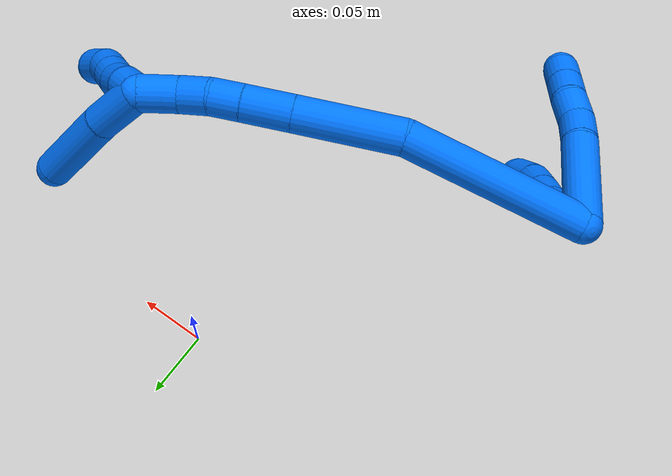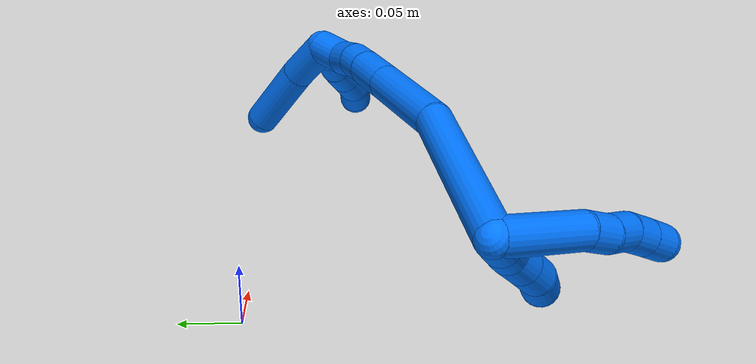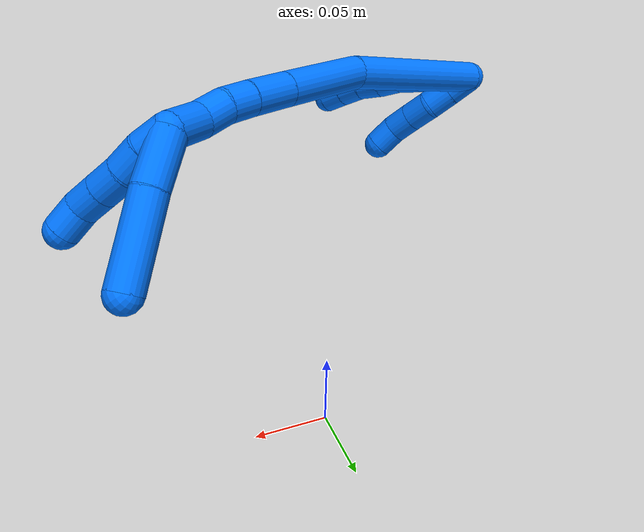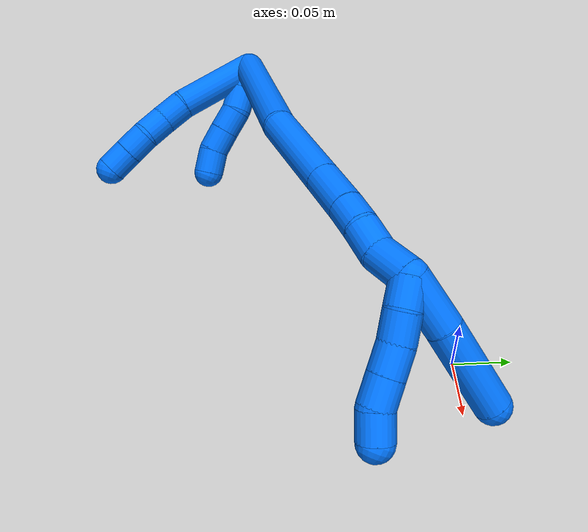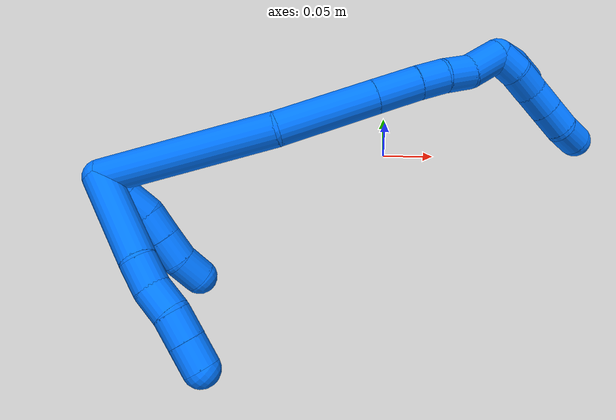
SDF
<sdf version="1.7">
 <world name="default">
  <model name="14">
   <static>0</static>
   <link name="14">
    <collision name="collision-cylinder-e_1_2_8">
     <pose>0.001274 -0.020479 -0.02689 2.49072 0.037686 0.111581</pose>
     <geometry><cylinder><radius>0.0125</radius><length>0.067649</length></cylinder></geometry>
     <surface>
      <friction><ode><mu>1.16</mu><mu2>1.16</mu2><slip1>0</slip1><slip2>0</slip2></ode></friction>
      <contact><ode><kp>1e+06</kp><kd>1</kd><max_vel>0</max_vel><min_depth>0.001</min_depth></ode></contact>
     </surface>
    </collision>
    <visual name="visual-cylinder-e_1_2_8">
     <pose>0.001274 -0.020479 -0.02689 2.49072 0.037686 0.111581</pose>
     <geometry><cylinder><radius>0.0125</radius><length>0.067649</length></cylinder></geometry>
     <material><ambient>0 0.462745 1 1</ambient></material>
    </visual>
    <collision name="collision-cylinder-e_2_8_9">
     <pose>0.001921 -0.045981 -0.063188 2.65116 -0.058839 -0.234113</pose>
     <geometry><cylinder><radius>0.0125</radius><length>0.021365</length></cylinder></geometry>
     <surface>
      <friction><ode><mu>1.16</mu><mu2>1.16</mu2><slip1>0</slip1><slip2>0</slip2></ode></friction>
      <contact><ode><kp>1e+06</kp><kd>1</kd><max_vel>0</max_vel><min_depth>0.001</min_depth></ode></contact>
     </surface>
    </collision>
    <visual name="visual-cylinder-e_2_8_9">
     <pose>0.001921 -0.045981 -0.063188 2.65116 -0.058839 -0.234113</pose>
     <geometry><cylinder><radius>0.0125</radius><length>0.021365</length></cylinder></geometry>
     <material><ambient>0 0.462745 1 1</ambient></material>
    </visual>
    <collision name="collision-cylinder-e_3_9_10">
     <pose>0.002967 -0.055581 -0.08169 2.67537 0.162975 0.66259</pose>
     <geometry><cylinder><radius>0.0125</radius><length>0.020637</length></cylinder></geometry>
     <surface>
      <friction><ode><mu>1.16</mu><mu2>1.16</mu2><slip1>0</slip1><slip2>0</slip2></ode></friction>
      <contact><ode><kp>1e+06</kp><kd>1</kd><max_vel>0</max_vel><min_depth>0.001</min_depth></ode></contact>
     </surface>
    </collision>
    <visual name="visual-cylinder-e_3_9_10">
     <pose>0.002967 -0.055581 -0.08169 2.67537 0.162975 0.66259</pose>
     <geometry><cylinder><radius>0.0125</radius><length>0.020637</length></cylinder></geometry>
     <material><ambient>0 0.462745 1 1</ambient></material>
    </visual>
    <collision name="collision-cylinder-e_4_10_11">
     <pose>0.003765 -0.063995 -0.100096 2.75069 -0.086748 -0.431615</pose>
     <geometry><cylinder><radius>0.0125</radius><length>0.020217</length></cylinder></geometry>
     <surface>
      <friction><ode><mu>1.16</mu><mu2>1.16</mu2><slip1>0</slip1><slip2>0</slip2></ode></friction>
      <contact><ode><kp>1e+06</kp><kd>1</kd><max_vel>0</max_vel><min_depth>0.001</min_depth></ode></contact>
     </surface>
    </collision>
    <visual name="visual-cylinder-e_4_10_11">
     <pose>0.003765 -0.063995 -0.100096 2.75069 -0.086748 -0.431615</pose>
     <geometry><cylinder><radius>0.0125</radius><length>0.020217</length></cylinder></geometry>
     <material><ambient>0 0.462745 1 1</ambient></material>
    </visual>
    <collision name="collision-cylinder-e_5_11_6">
     <pose>0.00189 -0.07153 -0.118715 2.76345 -0.09944 -0.50882</pose>
     <geometry><cylinder><radius>0.0125</radius><length>0.020132</length></cylinder></geometry>
     <surface>
      <friction><ode><mu>1.16</mu><mu2>1.16</mu2><slip1>0</slip1><slip2>0</slip2></ode></friction>
      <contact><ode><kp>1e+06</kp><kd>1</kd><max_vel>0</max_vel><min_depth>0.001</min_depth></ode></contact>
     </surface>
    </collision>
    <visual name="visual-cylinder-e_5_11_6">
     <pose>0.00189 -0.07153 -0.118715 2.76345 -0.09944 -0.50882</pose>
     <geometry><cylinder><radius>0.0125</radius><length>0.020132</length></cylinder></geometry>
     <material><ambient>0 0.462745 1 1</ambient></material>
    </visual>
    <collision name="collision-cylinder-e_1_2_12">
     <pose>0.000301 0.000828 -0.009961 -3.05869 0.030093 -0.696038</pose>
     <geometry><cylinder><radius>0.0125</radius><length>0.02</length></cylinder></geometry>
     <surface>
      <friction><ode><mu>1.16</mu><mu2>1.16</mu2><slip1>0</slip1><slip2>0</slip2></ode></friction>
      <contact><ode><kp>1e+06</kp><kd>1</kd><max_vel>0</max_vel><min_depth>0.001</min_depth></ode></contact>
     </surface>
    </collision>
    <visual name="visual-cylinder-e_1_2_12">
     <pose>0.000301 0.000828 -0.009961 -3.05869 0.030093 -0.696038</pose>
     <geometry><cylinder><radius>0.0125</radius><length>0.02</length></cylinder></geometry>
     <material><ambient>0 0.462745 1 1</ambient></material>
    </visual>
    <collision name="collision-cylinder-e_2_12_13">
     <pose>0.001107 0.002406 -0.029881 -3.06638 0.050516 -1.18261</pose>
     <geometry><cylinder><radius>0.0125</radius><length>0.02</length></cylinder></geometry>
     <surface>
      <friction><ode><mu>1.16</mu><mu2>1.16</mu2><slip1>0</slip1><slip2>0</slip2></ode></friction>
      <contact><ode><kp>1e+06</kp><kd>1</kd><max_vel>0</max_vel><min_depth>0.001</min_depth></ode></contact>
     </surface>
    </collision>
    <visual name="visual-cylinder-e_2_12_13">
     <pose>0.001107 0.002406 -0.029881 -3.06638 0.050516 -1.18261</pose>
     <geometry><cylinder><radius>0.0125</radius><length>0.02</length></cylinder></geometry>
     <material><ambient>0 0.462745 1 1</ambient></material>
    </visual>
    <collision name="collision-cylinder-e_3_13_14">
     <pose>3.3e-05 0.001904 -0.049635 3.01441 -0.158558 -1.79022</pose>
     <geometry><cylinder><radius>0.0125</radius><length>0.02</length></cylinder></geometry>
     <surface>
      <friction><ode><mu>1.16</mu><mu2>1.16</mu2><slip1>0</slip1><slip2>0</slip2></ode></friction>
      <contact><ode><kp>1e+06</kp><kd>1</kd><max_vel>0</max_vel><min_depth>0.001</min_depth></ode></contact>
     </surface>
    </collision>
    <visual name="visual-cylinder-e_3_13_14">
     <pose>3.3e-05 0.001904 -0.049635 3.01441 -0.158558 -1.79022</pose>
     <geometry><cylinder><radius>0.0125</radius><length>0.02</length></cylinder></geometry>
     <material><ambient>0 0.462745 1 1</ambient></material>
    </visual>
    <collision name="collision-cylinder-e_4_14_15">
     <pose>-0.003059 -0.0003 -0.069269 3.04522 -0.15188 -2.01184</pose>
     <geometry><cylinder><radius>0.0125</radius><length>0.02</length></cylinder></geometry>
     <surface>
      <friction><ode><mu>1.16</mu><mu2>1.16</mu2><slip1>0</slip1><slip2>0</slip2></ode></friction>
      <contact><ode><kp>1e+06</kp><kd>1</kd><max_vel>0</max_vel><min_depth>0.001</min_depth></ode></contact>
     </surface>
    </collision>
    <visual name="visual-cylinder-e_4_14_15">
     <pose>-0.003059 -0.0003 -0.069269 3.04522 -0.15188 -2.01184</pose>
     <geometry><cylinder><radius>0.0125</radius><length>0.02</length></cylinder></geometry>
     <material><ambient>0 0.462745 1 1</ambient></material>
    </visual>
    <collision name="collision-cylinder-e_5_15_5">
     <pose>-0.005079 0.000512 -0.088938 -2.9642 -0.050676 0.555236</pose>
     <geometry><cylinder><radius>0.0125</radius><length>0.02</length></cylinder></geometry>
     <surface>
      <friction><ode><mu>1.16</mu><mu2>1.16</mu2><slip1>0</slip1><slip2>0</slip2></ode></friction>
      <contact><ode><kp>1e+06</kp><kd>1</kd><max_vel>0</max_vel><min_depth>0.001</min_depth></ode></contact>
     </surface>
    </collision>
    <visual name="visual-cylinder-e_5_15_5">
     <pose>-0.005079 0.000512 -0.088938 -2.9642 -0.050676 0.555236</pose>
     <geometry><cylinder><radius>0.0125</radius><length>0.02</length></cylinder></geometry>
     <material><ambient>0 0.462745 1 1</ambient></material>
    </visual>
    <collision name="collision-cylinder-e_1_2_16">
     <pose>0.054871 0.011299 -0.027617 -2.75324 1.07273 -2.50267</pose>
     <geometry><cylinder><radius>0.0125</radius><length>0.124919</length></cylinder></geometry>
     <surface>
      <friction><ode><mu>1.16</mu><mu2>1.16</mu2><slip1>0</slip1><slip2>0</slip2></ode></friction>
      <contact><ode><kp>1e+06</kp><kd>1</kd><max_vel>0</max_vel><min_depth>0.001</min_depth></ode></contact>
     </surface>
    </collision>
    <visual name="visual-cylinder-e_1_2_16">
     <pose>0.054871 0.011299 -0.027617 -2.75324 1.07273 -2.50267</pose>
     <geometry><cylinder><radius>0.0125</radius><length>0.124919</length></cylinder></geometry>
     <material><ambient>0 0.462745 1 1</ambient></material>
    </visual>
    <collision name="collision-cylinder-e_2_16_17">
     <pose>0.138776 0.037699 -0.070778 -2.37065 0.929549 -1.78087</pose>
     <geometry><cylinder><radius>0.0125</radius><length>0.07246</length></cylinder></geometry>
     <surface>
      <friction><ode><mu>1.16</mu><mu2>1.16</mu2><slip1>0</slip1><slip2>0</slip2></ode></friction>
      <contact><ode><kp>1e+06</kp><kd>1</kd><max_vel>0</max_vel><min_depth>0.001</min_depth></ode></contact>
     </surface>
    </collision>
    <visual name="visual-cylinder-e_2_16_17">
     <pose>0.138776 0.037699 -0.070778 -2.37065 0.929549 -1.78087</pose>
     <geometry><cylinder><radius>0.0125</radius><length>0.07246</length></cylinder></geometry>
     <material><ambient>0 0.462745 1 1</ambient></material>
    </visual>
    <collision name="collision-cylinder-e_3_17_18">
     <pose>0.18102 0.059765 -0.0935 -2.37126 0.922867 -1.77354</pose>
     <geometry><cylinder><radius>0.0125</radius><length>0.033138</length></cylinder></geometry>
     <surface>
      <friction><ode><mu>1.16</mu><mu2>1.16</mu2><slip1>0</slip1><slip2>0</slip2></ode></friction>
      <contact><ode><kp>1e+06</kp><kd>1</kd><max_vel>0</max_vel><min_depth>0.001</min_depth></ode></contact>
     </surface>
    </collision>
    <visual name="visual-cylinder-e_3_17_18">
     <pose>0.18102 0.059765 -0.0935 -2.37126 0.922867 -1.77354</pose>
     <geometry><cylinder><radius>0.0125</radius><length>0.033138</length></cylinder></geometry>
     <material><ambient>0 0.462745 1 1</ambient></material>
    </visual>
    <collision name="collision-cylinder-e_4_18_19">
     <pose>0.20221 0.07115 -0.105569 -2.40677 0.880168 -1.7711</pose>
     <geometry><cylinder><radius>0.0125</radius><length>0.020702</length></cylinder></geometry>
     <surface>
      <friction><ode><mu>1.16</mu><mu2>1.16</mu2><slip1>0</slip1><slip2>0</slip2></ode></friction>
      <contact><ode><kp>1e+06</kp><kd>1</kd><max_vel>0</max_vel><min_depth>0.001</min_depth></ode></contact>
     </surface>
    </collision>
    <visual name="visual-cylinder-e_4_18_19">
     <pose>0.20221 0.07115 -0.105569 -2.40677 0.880168 -1.7711</pose>
     <geometry><cylinder><radius>0.0125</radius><length>0.020702</length></cylinder></geometry>
     <material><ambient>0 0.462745 1 1</ambient></material>
    </visual>
    <collision name="collision-cylinder-e_5_19_20">
     <pose>0.216978 0.081279 -0.116343 -2.3711 0.691776 -1.45308</pose>
     <geometry><cylinder><radius>0.0125</radius><length>0.021286</length></cylinder></geometry>
     <surface>
      <friction><ode><mu>1.16</mu><mu2>1.16</mu2><slip1>0</slip1><slip2>0</slip2></ode></friction>
      <contact><ode><kp>1e+06</kp><kd>1</kd><max_vel>0</max_vel><min_depth>0.001</min_depth></ode></contact>
     </surface>
    </collision>
    <visual name="visual-cylinder-e_5_19_20">
     <pose>0.216978 0.081279 -0.116343 -2.3711 0.691776 -1.45308</pose>
     <geometry><cylinder><radius>0.0125</radius><length>0.021286</length></cylinder></geometry>
     <material><ambient>0 0.462745 1 1</ambient></material>
    </visual>
    <collision name="collision-cylinder-e_6_20_1">
     <pose>0.234557 0.09469 -0.125864 -2.01222 0.902466 -1.30597</pose>
     <geometry><cylinder><radius>0.0125</radius><length>0.027495</length></cylinder></geometry>
     <surface>
      <friction><ode><mu>1.16</mu><mu2>1.16</mu2><slip1>0</slip1><slip2>0</slip2></ode></friction>
      <contact><ode><kp>1e+06</kp><kd>1</kd><max_vel>0</max_vel><min_depth>0.001</min_depth></ode></contact>
     </surface>
    </collision>
    <visual name="visual-cylinder-e_6_20_1">
     <pose>0.234557 0.09469 -0.125864 -2.01222 0.902466 -1.30597</pose>
     <geometry><cylinder><radius>0.0125</radius><length>0.027495</length></cylinder></geometry>
     <material><ambient>0 0.462745 1 1</ambient></material>
    </visual>
    <collision name="collision-cylinder-e_1_1_21">
     <pose>0.246673 0.103551 -0.139347 -3.02441 0.133052 -1.69783</pose>
     <geometry><cylinder><radius>0.0125</radius><length>0.02</length></cylinder></geometry>
     <surface>
      <friction><ode><mu>1.16</mu><mu2>1.16</mu2><slip1>0</slip1><slip2>0</slip2></ode></friction>
      <contact><ode><kp>1e+06</kp><kd>1</kd><max_vel>0</max_vel><min_depth>0.001</min_depth></ode></contact>
     </surface>
    </collision>
    <visual name="visual-cylinder-e_1_1_21">
     <pose>0.246673 0.103551 -0.139347 -3.02441 0.133052 -1.69783</pose>
     <geometry><cylinder><radius>0.0125</radius><length>0.02</length></cylinder></geometry>
     <material><ambient>0 0.462745 1 1</ambient></material>
    </visual>
    <collision name="collision-cylinder-e_2_21_22">
     <pose>0.247851 0.106674 -0.158995 -2.94388 -0.014915 0.150101</pose>
     <geometry><cylinder><radius>0.0125</radius><length>0.02</length></cylinder></geometry>
     <surface>
      <friction><ode><mu>1.16</mu><mu2>1.16</mu2><slip1>0</slip1><slip2>0</slip2></ode></friction>
      <contact><ode><kp>1e+06</kp><kd>1</kd><max_vel>0</max_vel><min_depth>0.001</min_depth></ode></contact>
     </surface>
    </collision>
    <visual name="visual-cylinder-e_2_21_22">
     <pose>0.247851 0.106674 -0.158995 -2.94388 -0.014915 0.150101</pose>
     <geometry><cylinder><radius>0.0125</radius><length>0.02</length></cylinder></geometry>
     <material><ambient>0 0.462745 1 1</ambient></material>
    </visual>
    <collision name="collision-cylinder-e_3_22_23">
     <pose>0.247769 0.109129 -0.178786 -3.09244 0.006747 -0.272771</pose>
     <geometry><cylinder><radius>0.0125</radius><length>0.02</length></cylinder></geometry>
     <surface>
      <friction><ode><mu>1.16</mu><mu2>1.16</mu2><slip1>0</slip1><slip2>0</slip2></ode></friction>
      <contact><ode><kp>1e+06</kp><kd>1</kd><max_vel>0</max_vel><min_depth>0.001</min_depth></ode></contact>
     </surface>
    </collision>
    <visual name="visual-cylinder-e_3_22_23">
     <pose>0.247769 0.109129 -0.178786 -3.09244 0.006747 -0.272771</pose>
     <geometry><cylinder><radius>0.0125</radius><length>0.02</length></cylinder></geometry>
     <material><ambient>0 0.462745 1 1</ambient></material>
    </visual>
    <collision name="collision-cylinder-e_4_23_24">
     <pose>0.247904 0.110112 -0.198762 -3.09243 0.006755 -0.273054</pose>
     <geometry><cylinder><radius>0.0125</radius><length>0.02</length></cylinder></geometry>
     <surface>
      <friction><ode><mu>1.16</mu><mu2>1.16</mu2><slip1>0</slip1><slip2>0</slip2></ode></friction>
      <contact><ode><kp>1e+06</kp><kd>1</kd><max_vel>0</max_vel><min_depth>0.001</min_depth></ode></contact>
     </surface>
    </collision>
    <visual name="visual-cylinder-e_4_23_24">
     <pose>0.247904 0.110112 -0.198762 -3.09243 0.006755 -0.273054</pose>
     <geometry><cylinder><radius>0.0125</radius><length>0.02</length></cylinder></geometry>
     <material><ambient>0 0.462745 1 1</ambient></material>
    </visual>
    <collision name="collision-cylinder-e_5_24_4">
     <pose>0.248592 0.114251 -0.21804 -2.7674 0.062081 -0.325136</pose>
     <geometry><cylinder><radius>0.0125</radius><length>0.02</length></cylinder></geometry>
     <surface>
      <friction><ode><mu>1.16</mu><mu2>1.16</mu2><slip1>0</slip1><slip2>0</slip2></ode></friction>
      <contact><ode><kp>1e+06</kp><kd>1</kd><max_vel>0</max_vel><min_depth>0.001</min_depth></ode></contact>
     </surface>
    </collision>
    <visual name="visual-cylinder-e_5_24_4">
     <pose>0.248592 0.114251 -0.21804 -2.7674 0.062081 -0.325136</pose>
     <geometry><cylinder><radius>0.0125</radius><length>0.02</length></cylinder></geometry>
     <material><ambient>0 0.462745 1 1</ambient></material>
    </visual>
    <collision name="collision-cylinder-e_1_1_25">
     <pose>0.246248 0.118467 -0.139861 -2.14317 0.047113 -0.086365</pose>
     <geometry><cylinder><radius>0.0125</radius><length>0.038288</length></cylinder></geometry>
     <surface>
      <friction><ode><mu>1.16</mu><mu2>1.16</mu2><slip1>0</slip1><slip2>0</slip2></ode></friction>
      <contact><ode><kp>1e+06</kp><kd>1</kd><max_vel>0</max_vel><min_depth>0.001</min_depth></ode></contact>
     </surface>
    </collision>
    <visual name="visual-cylinder-e_1_1_25">
     <pose>0.246248 0.118467 -0.139861 -2.14317 0.047113 -0.086365</pose>
     <geometry><cylinder><radius>0.0125</radius><length>0.038288</length></cylinder></geometry>
     <material><ambient>0 0.462745 1 1</ambient></material>
    </visual>
    <collision name="collision-cylinder-e_2_25_3">
     <pose>0.245761 0.160355 -0.167065 -2.14903 -0.045009 0.083087</pose>
     <geometry><cylinder><radius>0.0125</radius><length>0.061712</length></cylinder></geometry>
     <surface>
      <friction><ode><mu>1.16</mu><mu2>1.16</mu2><slip1>0</slip1><slip2>0</slip2></ode></friction>
      <contact><ode><kp>1e+06</kp><kd>1</kd><max_vel>0</max_vel><min_depth>0.001</min_depth></ode></contact>
     </surface>
    </collision>
    <visual name="visual-cylinder-e_2_25_3">
     <pose>0.245761 0.160355 -0.167065 -2.14903 -0.045009 0.083087</pose>
     <geometry><cylinder><radius>0.0125</radius><length>0.061712</length></cylinder></geometry>
     <material><ambient>0 0.462745 1 1</ambient></material>
    </visual>
    <collision name="collision-sphere-3">
     <pose>0.244373 0.186169 -0.183912 0 -0 0</pose>
     <geometry><sphere><radius>0.0125</radius></sphere></geometry>
     <surface>
      <friction><ode><mu>1.16</mu><mu2>1.16</mu2><slip1>0</slip1><slip2>0</slip2></ode></friction>
      <contact><ode><kp>1e+06</kp><kd>1</kd><max_vel>0</max_vel><min_depth>0.001</min_depth></ode></contact>
     </surface>
    </collision>
    <visual name="visual-sphere-3">
     <pose>0.244373 0.186169 -0.183912 0 -0 0</pose>
     <geometry><sphere><radius>0.0125</radius></sphere></geometry>
     <material><ambient>0 0.462745 1 1</ambient></material>
    </visual>
    <collision name="collision-sphere-25">
     <pose>0.24715 0.134542 -0.150218 0 -0 0</pose>
     <geometry><sphere><radius>0.0125</radius></sphere></geometry>
     <surface>
      <friction><ode><mu>1.16</mu><mu2>1.16</mu2><slip1>0</slip1><slip2>0</slip2></ode></friction>
      <contact><ode><kp>1e+06</kp><kd>1</kd><max_vel>0</max_vel><min_depth>0.001</min_depth></ode></contact>
     </surface>
    </collision>
    <visual name="visual-sphere-25">
     <pose>0.24715 0.134542 -0.150218 0 -0 0</pose>
     <geometry><sphere><radius>0.0125</radius></sphere></geometry>
     <material><ambient>0 0.462745 1 1</ambient></material>
    </visual>
    <collision name="collision-sphere-4">
     <pose>0.249212 0.1179 -0.22733 0 -0 0</pose>
     <geometry><sphere><radius>0.0125</radius></sphere></geometry>
     <surface>
      <friction><ode><mu>1.16</mu><mu2>1.16</mu2><slip1>0</slip1><slip2>0</slip2></ode></friction>
      <contact><ode><kp>1e+06</kp><kd>1</kd><max_vel>0</max_vel><min_depth>0.001</min_depth></ode></contact>
     </surface>
    </collision>
    <visual name="visual-sphere-4">
     <pose>0.249212 0.1179 -0.22733 0 -0 0</pose>
     <geometry><sphere><radius>0.0125</radius></sphere></geometry>
     <material><ambient>0 0.462745 1 1</ambient></material>
    </visual>
    <collision name="collision-sphere-24">
     <pose>0.247971 0.110603 -0.208749 0 -0 0</pose>
     <geometry><sphere><radius>0.0125</radius></sphere></geometry>
     <surface>
      <friction><ode><mu>1.16</mu><mu2>1.16</mu2><slip1>0</slip1><slip2>0</slip2></ode></friction>
      <contact><ode><kp>1e+06</kp><kd>1</kd><max_vel>0</max_vel><min_depth>0.001</min_depth></ode></contact>
     </surface>
    </collision>
    <visual name="visual-sphere-24">
     <pose>0.247971 0.110603 -0.208749 0 -0 0</pose>
     <geometry><sphere><radius>0.0125</radius></sphere></geometry>
     <material><ambient>0 0.462745 1 1</ambient></material>
    </visual>
    <collision name="collision-sphere-23">
     <pose>0.247836 0.10962 -0.188774 0 -0 0</pose>
     <geometry><sphere><radius>0.0125</radius></sphere></geometry>
     <surface>
      <friction><ode><mu>1.16</mu><mu2>1.16</mu2><slip1>0</slip1><slip2>0</slip2></ode></friction>
      <contact><ode><kp>1e+06</kp><kd>1</kd><max_vel>0</max_vel><min_depth>0.001</min_depth></ode></contact>
     </surface>
    </collision>
    <visual name="visual-sphere-23">
     <pose>0.247836 0.10962 -0.188774 0 -0 0</pose>
     <geometry><sphere><radius>0.0125</radius></sphere></geometry>
     <material><ambient>0 0.462745 1 1</ambient></material>
    </visual>
    <collision name="collision-sphere-22">
     <pose>0.247701 0.108638 -0.168799 0 -0 0</pose>
     <geometry><sphere><radius>0.0125</radius></sphere></geometry>
     <surface>
      <friction><ode><mu>1.16</mu><mu2>1.16</mu2><slip1>0</slip1><slip2>0</slip2></ode></friction>
      <contact><ode><kp>1e+06</kp><kd>1</kd><max_vel>0</max_vel><min_depth>0.001</min_depth></ode></contact>
     </surface>
    </collision>
    <visual name="visual-sphere-22">
     <pose>0.247701 0.108638 -0.168799 0 -0 0</pose>
     <geometry><sphere><radius>0.0125</radius></sphere></geometry>
     <material><ambient>0 0.462745 1 1</ambient></material>
    </visual>
    <collision name="collision-sphere-21">
     <pose>0.248 0.10471 -0.14919 0 -0 0</pose>
     <geometry><sphere><radius>0.0125</radius></sphere></geometry>
     <surface>
      <friction><ode><mu>1.16</mu><mu2>1.16</mu2><slip1>0</slip1><slip2>0</slip2></ode></friction>
      <contact><ode><kp>1e+06</kp><kd>1</kd><max_vel>0</max_vel><min_depth>0.001</min_depth></ode></contact>
     </surface>
    </collision>
    <visual name="visual-sphere-21">
     <pose>0.248 0.10471 -0.14919 0 -0 0</pose>
     <geometry><sphere><radius>0.0125</radius></sphere></geometry>
     <material><ambient>0 0.462745 1 1</ambient></material>
    </visual>
    <collision name="collision-sphere-1">
     <pose>0.245347 0.102392 -0.129503 0 -0 0</pose>
     <geometry><sphere><radius>0.0125</radius></sphere></geometry>
     <surface>
      <friction><ode><mu>1.16</mu><mu2>1.16</mu2><slip1>0</slip1><slip2>0</slip2></ode></friction>
      <contact><ode><kp>1e+06</kp><kd>1</kd><max_vel>0</max_vel><min_depth>0.001</min_depth></ode></contact>
     </surface>
    </collision>
    <visual name="visual-sphere-1">
     <pose>0.245347 0.102392 -0.129503 0 -0 0</pose>
     <geometry><sphere><radius>0.0125</radius></sphere></geometry>
     <material><ambient>0 0.462745 1 1</ambient></material>
    </visual>
    <collision name="collision-sphere-6">
     <pose>0.000891 -0.075228 -0.128023 0 -0 0</pose>
     <geometry><sphere><radius>0.0125</radius></sphere></geometry>
     <surface>
      <friction><ode><mu>1.16</mu><mu2>1.16</mu2><slip1>0</slip1><slip2>0</slip2></ode></friction>
      <contact><ode><kp>1e+06</kp><kd>1</kd><max_vel>0</max_vel><min_depth>0.001</min_depth></ode></contact>
     </surface>
    </collision>
    <visual name="visual-sphere-6">
     <pose>0.000891 -0.075228 -0.128023 0 -0 0</pose>
     <geometry><sphere><radius>0.0125</radius></sphere></geometry>
     <material><ambient>0 0.462745 1 1</ambient></material>
    </visual>
    <collision name="collision-sphere-11">
     <pose>0.002889 -0.067832 -0.109406 0 -0 0</pose>
     <geometry><sphere><radius>0.0125</radius></sphere></geometry>
     <surface>
      <friction><ode><mu>1.16</mu><mu2>1.16</mu2><slip1>0</slip1><slip2>0</slip2></ode></friction>
      <contact><ode><kp>1e+06</kp><kd>1</kd><max_vel>0</max_vel><min_depth>0.001</min_depth></ode></contact>
     </surface>
    </collision>
    <visual name="visual-sphere-11">
     <pose>0.002889 -0.067832 -0.109406 0 -0 0</pose>
     <geometry><sphere><radius>0.0125</radius></sphere></geometry>
     <material><ambient>0 0.462745 1 1</ambient></material>
    </visual>
    <collision name="collision-sphere-10">
     <pose>0.004641 -0.060158 -0.090785 0 -0 0</pose>
     <geometry><sphere><radius>0.0125</radius></sphere></geometry>
     <surface>
      <friction><ode><mu>1.16</mu><mu2>1.16</mu2><slip1>0</slip1><slip2>0</slip2></ode></friction>
      <contact><ode><kp>1e+06</kp><kd>1</kd><max_vel>0</max_vel><min_depth>0.001</min_depth></ode></contact>
     </surface>
    </collision>
    <visual name="visual-sphere-10">
     <pose>0.004641 -0.060158 -0.090785 0 -0 0</pose>
     <geometry><sphere><radius>0.0125</radius></sphere></geometry>
     <material><ambient>0 0.462745 1 1</ambient></material>
    </visual>
    <collision name="collision-sphere-9">
     <pose>0.001292 -0.051004 -0.072595 0 -0 0</pose>
     <geometry><sphere><radius>0.0125</radius></sphere></geometry>
     <surface>
      <friction><ode><mu>1.16</mu><mu2>1.16</mu2><slip1>0</slip1><slip2>0</slip2></ode></friction>
      <contact><ode><kp>1e+06</kp><kd>1</kd><max_vel>0</max_vel><min_depth>0.001</min_depth></ode></contact>
     </surface>
    </collision>
    <visual name="visual-sphere-9">
     <pose>0.001292 -0.051004 -0.072595 0 -0 0</pose>
     <geometry><sphere><radius>0.0125</radius></sphere></geometry>
     <material><ambient>0 0.462745 1 1</ambient></material>
    </visual>
    <collision name="collision-sphere-2">
     <geometry><sphere><radius>0.0125</radius></sphere></geometry>
     <surface>
      <friction><ode><mu>1.16</mu><mu2>1.16</mu2><slip1>0</slip1><slip2>0</slip2></ode></friction>
      <contact><ode><kp>1e+06</kp><kd>1</kd><max_vel>0</max_vel><min_depth>0.001</min_depth></ode></contact>
     </surface>
    </collision>
    <visual name="visual-sphere-2">
     <geometry><sphere><radius>0.0125</radius></sphere></geometry>
     <material><ambient>0 0.462745 1 1</ambient></material>
    </visual>
    <collision name="collision-sphere-19">
     <pose>0.210189 0.07557 -0.110461 0 -0 0</pose>
     <geometry><sphere><radius>0.0125</radius></sphere></geometry>
     <surface>
      <friction><ode><mu>1.16</mu><mu2>1.16</mu2><slip1>0</slip1><slip2>0</slip2></ode></friction>
      <contact><ode><kp>1e+06</kp><kd>1</kd><max_vel>0</max_vel><min_depth>0.001</min_depth></ode></contact>
     </surface>
    </collision>
    <visual name="visual-sphere-19">
     <pose>0.210189 0.07557 -0.110461 0 -0 0</pose>
     <geometry><sphere><radius>0.0125</radius></sphere></geometry>
     <material><ambient>0 0.462745 1 1</ambient></material>
    </visual>
    <collision name="collision-sphere-8">
     <pose>0.002549 -0.040958 -0.05378 0 -0 0</pose>
     <geometry><sphere><radius>0.0125</radius></sphere></geometry>
     <surface>
      <friction><ode><mu>1.16</mu><mu2>1.16</mu2><slip1>0</slip1><slip2>0</slip2></ode></friction>
      <contact><ode><kp>1e+06</kp><kd>1</kd><max_vel>0</max_vel><min_depth>0.001</min_depth></ode></contact>
     </surface>
    </collision>
    <visual name="visual-sphere-8">
     <pose>0.002549 -0.040958 -0.05378 0 -0 0</pose>
     <geometry><sphere><radius>0.0125</radius></sphere></geometry>
     <material><ambient>0 0.462745 1 1</ambient></material>
    </visual>
    <collision name="collision-sphere-12">
     <pose>0.000602 0.001655 -0.019922 0 -0 0</pose>
     <geometry><sphere><radius>0.0125</radius></sphere></geometry>
     <surface>
      <friction><ode><mu>1.16</mu><mu2>1.16</mu2><slip1>0</slip1><slip2>0</slip2></ode></friction>
      <contact><ode><kp>1e+06</kp><kd>1</kd><max_vel>0</max_vel><min_depth>0.001</min_depth></ode></contact>
     </surface>
    </collision>
    <visual name="visual-sphere-12">
     <pose>0.000602 0.001655 -0.019922 0 -0 0</pose>
     <geometry><sphere><radius>0.0125</radius></sphere></geometry>
     <material><ambient>0 0.462745 1 1</ambient></material>
    </visual>
    <collision name="collision-sphere-13">
     <pose>0.001612 0.003156 -0.03984 0 -0 0</pose>
     <geometry><sphere><radius>0.0125</radius></sphere></geometry>
     <surface>
      <friction><ode><mu>1.16</mu><mu2>1.16</mu2><slip1>0</slip1><slip2>0</slip2></ode></friction>
      <contact><ode><kp>1e+06</kp><kd>1</kd><max_vel>0</max_vel><min_depth>0.001</min_depth></ode></contact>
     </surface>
    </collision>
    <visual name="visual-sphere-13">
     <pose>0.001612 0.003156 -0.03984 0 -0 0</pose>
     <geometry><sphere><radius>0.0125</radius></sphere></geometry>
     <material><ambient>0 0.462745 1 1</ambient></material>
    </visual>
    <collision name="collision-sphere-14">
     <pose>-0.001546 0.000651 -0.05943 0 -0 0</pose>
     <geometry><sphere><radius>0.0125</radius></sphere></geometry>
     <surface>
      <friction><ode><mu>1.16</mu><mu2>1.16</mu2><slip1>0</slip1><slip2>0</slip2></ode></friction>
      <contact><ode><kp>1e+06</kp><kd>1</kd><max_vel>0</max_vel><min_depth>0.001</min_depth></ode></contact>
     </surface>
    </collision>
    <visual name="visual-sphere-14">
     <pose>-0.001546 0.000651 -0.05943 0 -0 0</pose>
     <geometry><sphere><radius>0.0125</radius></sphere></geometry>
     <material><ambient>0 0.462745 1 1</ambient></material>
    </visual>
    <collision name="collision-sphere-15">
     <pose>-0.004572 -0.001251 -0.079108 0 -0 0</pose>
     <geometry><sphere><radius>0.0125</radius></sphere></geometry>
     <surface>
      <friction><ode><mu>1.16</mu><mu2>1.16</mu2><slip1>0</slip1><slip2>0</slip2></ode></friction>
      <contact><ode><kp>1e+06</kp><kd>1</kd><max_vel>0</max_vel><min_depth>0.001</min_depth></ode></contact>
     </surface>
    </collision>
    <visual name="visual-sphere-15">
     <pose>-0.004572 -0.001251 -0.079108 0 -0 0</pose>
     <geometry><sphere><radius>0.0125</radius></sphere></geometry>
     <material><ambient>0 0.462745 1 1</ambient></material>
    </visual>
    <collision name="collision-sphere-5">
     <pose>-0.005585 0.002274 -0.098769 0 -0 0</pose>
     <geometry><sphere><radius>0.0125</radius></sphere></geometry>
     <surface>
      <friction><ode><mu>1.16</mu><mu2>1.16</mu2><slip1>0</slip1><slip2>0</slip2></ode></friction>
      <contact><ode><kp>1e+06</kp><kd>1</kd><max_vel>0</max_vel><min_depth>0.001</min_depth></ode></contact>
     </surface>
    </collision>
    <visual name="visual-sphere-5">
     <pose>-0.005585 0.002274 -0.098769 0 -0 0</pose>
     <geometry><sphere><radius>0.0125</radius></sphere></geometry>
     <material><ambient>0 0.462745 1 1</ambient></material>
    </visual>
    <collision name="collision-sphere-16">
     <pose>0.109743 0.022598 -0.055234 0 -0 0</pose>
     <geometry><sphere><radius>0.0125</radius></sphere></geometry>
     <surface>
      <friction><ode><mu>1.16</mu><mu2>1.16</mu2><slip1>0</slip1><slip2>0</slip2></ode></friction>
      <contact><ode><kp>1e+06</kp><kd>1</kd><max_vel>0</max_vel><min_depth>0.001</min_depth></ode></contact>
     </surface>
    </collision>
    <visual name="visual-sphere-16">
     <pose>0.109743 0.022598 -0.055234 0 -0 0</pose>
     <geometry><sphere><radius>0.0125</radius></sphere></geometry>
     <material><ambient>0 0.462745 1 1</ambient></material>
    </visual>
    <collision name="collision-sphere-17">
     <pose>0.167809 0.052801 -0.086323 0 -0 0</pose>
     <geometry><sphere><radius>0.0125</radius></sphere></geometry>
     <surface>
      <friction><ode><mu>1.16</mu><mu2>1.16</mu2><slip1>0</slip1><slip2>0</slip2></ode></friction>
      <contact><ode><kp>1e+06</kp><kd>1</kd><max_vel>0</max_vel><min_depth>0.001</min_depth></ode></contact>
     </surface>
    </collision>
    <visual name="visual-sphere-17">
     <pose>0.167809 0.052801 -0.086323 0 -0 0</pose>
     <geometry><sphere><radius>0.0125</radius></sphere></geometry>
     <material><ambient>0 0.462745 1 1</ambient></material>
    </visual>
    <collision name="collision-sphere-18">
     <pose>0.194231 0.066729 -0.100677 0 -0 0</pose>
     <geometry><sphere><radius>0.0125</radius></sphere></geometry>
     <surface>
      <friction><ode><mu>1.16</mu><mu2>1.16</mu2><slip1>0</slip1><slip2>0</slip2></ode></friction>
      <contact><ode><kp>1e+06</kp><kd>1</kd><max_vel>0</max_vel><min_depth>0.001</min_depth></ode></contact>
     </surface>
    </collision>
    <visual name="visual-sphere-18">
     <pose>0.194231 0.066729 -0.100677 0 -0 0</pose>
     <geometry><sphere><radius>0.0125</radius></sphere></geometry>
     <material><ambient>0 0.462745 1 1</ambient></material>
    </visual>
    <collision name="collision-sphere-20">
     <pose>0.223767 0.086987 -0.122224 0 -0 0</pose>
     <geometry><sphere><radius>0.0125</radius></sphere></geometry>
     <surface>
      <friction><ode><mu>1.16</mu><mu2>1.16</mu2><slip1>0</slip1><slip2>0</slip2></ode></friction>
      <contact><ode><kp>1e+06</kp><kd>1</kd><max_vel>0</max_vel><min_depth>0.001</min_depth></ode></contact>
     </surface>
    </collision>
    <visual name="visual-sphere-20">
     <pose>0.223767 0.086987 -0.122224 0 -0 0</pose>
     <geometry><sphere><radius>0.0125</radius></sphere></geometry>
     <material><ambient>0 0.462745 1 1</ambient></material>
    </visual>
    <inertial>
     <pose>0.116936 0.041459 -0.090087 0 -0 0</pose>
     <mass>0.75</mass>
     <inertia>
      <ixx>-5.8e-05</ixx>
      <ixy>0</ixy>
      <ixz>0</ixz>
      <iyy>7.1e-05</iyy>
      <iyz>0</iyz>
      <izz>-0.000277</izz>
     </inertia>
    </inertial>
   </link>
   <pose>-0.198398 -0.166839 0.172306 -0.627214 -0.67524 0.330874</pose>
  </model>
 </world>
</sdf>
